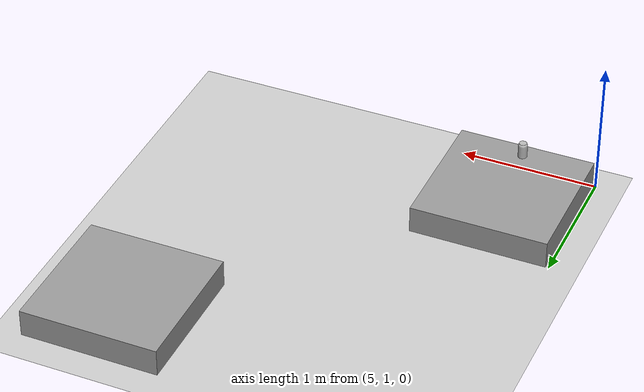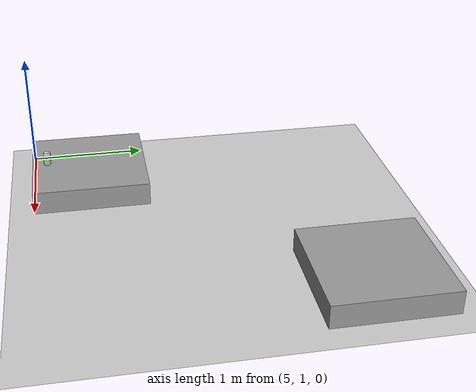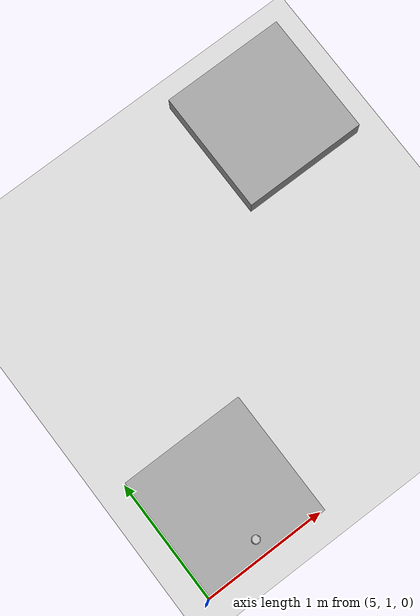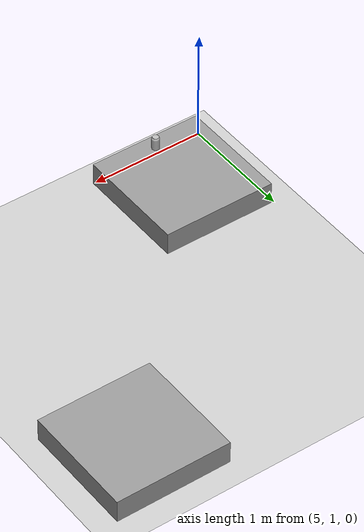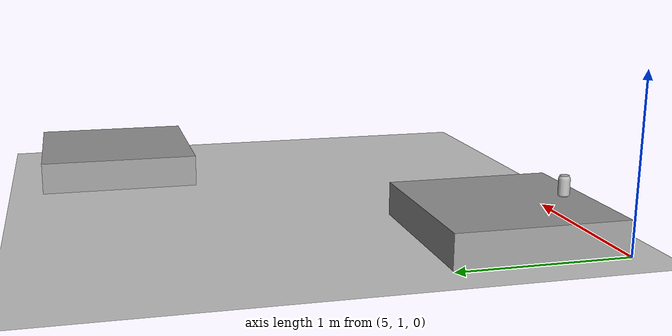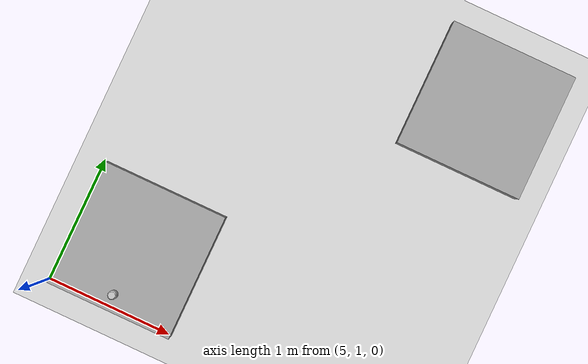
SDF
<sdf version="1.6">
 <world name="default">
  <light name="sun" type="directional">
   <pose>0 0 10 0 -0 0</pose>
   <diffuse>0.8 0.8 0.8 1</diffuse>
   <specular>0.2 0.2 0.2 1</specular>
   <attenuation>
    <range>1000</range>
    <constant>0.9</constant>
    <linear>0.01</linear>
    <quadratic>0.001</quadratic>
   </attenuation>
   <direction>-0.5 0.1 -0.9</direction>
  </light>
  <model name="ground_plane">
   <static>1</static>
   <link name="link">
    <collision name="collision">
     <geometry><plane><normal>0 0 1</normal><size>100 100</size></plane></geometry>
     <surface>
      <contact><collide_bitmask>65535</collide_bitmask></contact>
      <friction><ode><mu>100</mu><mu2>50</mu2></ode></friction>
     </surface>
    </collision>
    <visual name="visual">
     <cast_shadows>0</cast_shadows>
     <geometry><plane><normal>0 0 1</normal><size>100 100</size></plane></geometry>
     <material>
      <script><uri>file://media/materials/scripts/gazebo.material</uri><name>Gazebo/Grey</name></script>
     </material>
    </visual>
   </link>
  </model>
  <gravity>0 0 -9.8</gravity>
  <magnetic_field>6e-06 2.3e-05 -4.2e-05</magnetic_field>
  <atmosphere type="adiabatic"/>
  <physics name="default_physics" default="0" type="ode">
   <max_step_size>0.001</max_step_size>
   <real_time_factor>1</real_time_factor>
   <real_time_update_rate>1000</real_time_update_rate>
  </physics>
  <scene><ambient>0.4 0.4 0.4 1</ambient><background>0.7 0.7 0.7 1</background><shadows>1</shadows></scene>
  <audio><device>default</device></audio>
  <spherical_coordinates>
   <surface_model>EARTH_WGS84</surface_model>
   <latitude_deg>0</latitude_deg>
   <longitude_deg>0</longitude_deg>
   <elevation>0</elevation>
   <heading_deg>0</heading_deg>
  </spherical_coordinates>
  <model name="unit_box">
   <link name="unit_box::link">
    <inertial>
     <mass>1</mass>
     <inertia>
      <ixx>0.166667</ixx>
      <ixy>0</ixy>
      <ixz>0</ixz>
      <iyy>0.166667</iyy>
      <iyz>0</iyz>
      <izz>0.166667</izz>
     </inertia>
    </inertial>
    <visual name="visual">
     <geometry><box><size>1 1 0.2</size></box></geometry>
     <material>
      <script><name>Gazebo/Grey</name><uri>file://media/materials/scripts/gazebo.material</uri></script>
      <shader type="vertex"><normal_map>__default__</normal_map></shader>
      <ambient>0.3 0.3 0.3 1</ambient>
      <diffuse>0.7 0.7 0.7 1</diffuse>
      <specular>0.01 0.01 0.01 1</specular>
      <emissive>0 0 0 1</emissive>
     </material>
    </visual>
    <collision name="collision">
     <geometry><box><size>1 1 0.2</size></box></geometry>
     <surface>
      <friction>
       <ode><mu>1</mu><mu2>1</mu2><fdir1>0 0 0</fdir1><slip1>0</slip1><slip2>0</slip2></ode>
       <torsional>
        <coefficient>1</coefficient>
        <patch_radius>0</patch_radius>
        <surface_radius>0</surface_radius>
        <use_patch_radius>1</use_patch_radius>
        <ode><slip>0</slip></ode>
       </torsional>
      </friction>
      <bounce><restitution_coefficient>0</restitution_coefficient><threshold>1e+06</threshold></bounce>
      <contact>
       <collide_without_contact>0</collide_without_contact>
       <collide_without_contact_bitmask>1</collide_without_contact_bitmask>
       <collide_bitmask>1</collide_bitmask>
       <ode>
        <soft_cfm>0</soft_cfm>
        <soft_erp>0.2</soft_erp>
        <kp>1e+13</kp>
        <kd>1</kd>
        <max_vel>0.01</max_vel>
        <min_depth>0</min_depth>
       </ode>
       <bullet>
        <split_impulse>1</split_impulse>
        <split_impulse_penetration_threshold>-0.01</split_impulse_penetration_threshold>
        <soft_cfm>0</soft_cfm>
        <soft_erp>0.2</soft_erp>
        <kp>1e+13</kp>
        <kd>1</kd>
       </bullet>
      </contact>
     </surface>
    </collision>
   </link>
   <static>0</static>
   <pose>5.52348 1.49672 0.099994 0 -1.1e-05 0.00025</pose>
  </model>
  <model name="unit_box_clone">
   <link name="unit_box::link">
    <inertial>
     <mass>1</mass>
     <inertia>
      <ixx>0.166667</ixx>
      <ixy>0</ixy>
      <ixz>0</ixz>
      <iyy>0.166667</iyy>
      <iyz>0</iyz>
      <izz>0.166667</izz>
     </inertia>
    </inertial>
    <visual name="visual">
     <geometry><box><size>1 1 0.2</size></box></geometry>
     <material>
      <script><name>Gazebo/Grey</name><uri>file://media/materials/scripts/gazebo.material</uri></script>
      <shader type="vertex"><normal_map>__default__</normal_map></shader>
      <ambient>0.3 0.3 0.3 1</ambient>
      <diffuse>0.7 0.7 0.7 1</diffuse>
      <specular>0.01 0.01 0.01 1</specular>
      <emissive>0 0 0 1</emissive>
     </material>
    </visual>
    <collision name="collision">
     <geometry><box><size>1 1 0.2</size></box></geometry>
     <surface>
      <friction>
       <ode><mu>1</mu><mu2>1</mu2><fdir1>0 0 0</fdir1><slip1>0</slip1><slip2>0</slip2></ode>
       <torsional>
        <coefficient>1</coefficient>
        <patch_radius>0</patch_radius>
        <surface_radius>0</surface_radius>
        <use_patch_radius>1</use_patch_radius>
        <ode><slip>0</slip></ode>
       </torsional>
      </friction>
      <bounce><restitution_coefficient>0</restitution_coefficient><threshold>1e+06</threshold></bounce>
      <contact>
       <collide_without_contact>0</collide_without_contact>
       <collide_without_contact_bitmask>1</collide_without_contact_bitmask>
       <collide_bitmask>1</collide_bitmask>
       <ode>
        <soft_cfm>0</soft_cfm>
        <soft_erp>0.2</soft_erp>
        <kp>1e+13</kp>
        <kd>1</kd>
        <max_vel>0.01</max_vel>
        <min_depth>0</min_depth>
       </ode>
       <bullet>
        <split_impulse>1</split_impulse>
        <split_impulse_penetration_threshold>-0.01</split_impulse_penetration_threshold>
        <soft_cfm>0</soft_cfm>
        <soft_erp>0.2</soft_erp>
        <kp>1e+13</kp>
        <kd>1</kd>
       </bullet>
      </contact>
     </surface>
    </collision>
   </link>
   <static>0</static>
   <pose>7.44369 3.54529 0.1 0 -0 0</pose>
  </model>
  <model name="coke_can">
   <link name="coke_can::coke_can::link">
    <inertial>
     <pose>0 0 0.06 0 -0 0</pose>
     <mass>0.39</mass>
     <inertia>
      <ixx>0.00055575</ixx>
      <ixy>0</ixy>
      <ixz>0</ixz>
      <iyy>0.00055575</iyy>
      <iyz>0</iyz>
      <izz>0.0001755</izz>
     </inertia>
    </inertial>
    <collision name="collision">
     <pose>0.003937 0.004724 -0.18 0 -0 0</pose>
     <geometry><mesh><uri>model://coke_can/meshes/coke_can.dae</uri></mesh></geometry>
     <surface>
      <friction><ode><mu>1</mu><mu2>1</mu2></ode></friction>
      <contact><ode><kp>1e+07</kp><kd>1</kd><min_depth>0.001</min_depth><max_vel>0.1</max_vel></ode></contact>
     </surface>
    </collision>
    <visual name="visual">
     <pose>0.003937 0.004724 -0.18 0 -0 0</pose>
     <geometry><mesh><uri>model://coke_can/meshes/coke_can.dae</uri></mesh></geometry>
    </visual>
   </link>
   <pose>5.51524 1.13089 0.197424 -0.011238 0.004022 -0.016828</pose>
  </model>
 </world>
</sdf>
